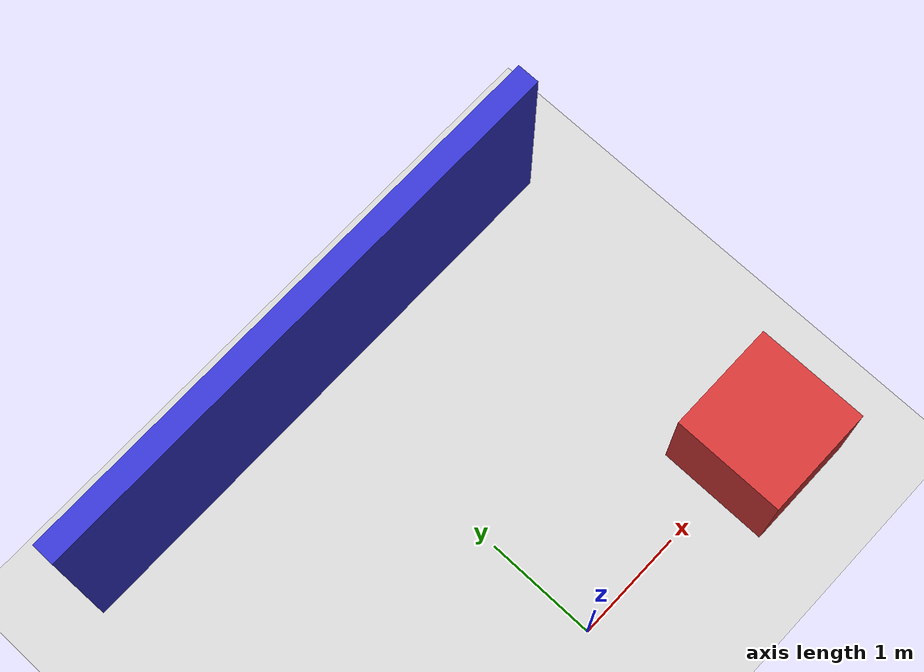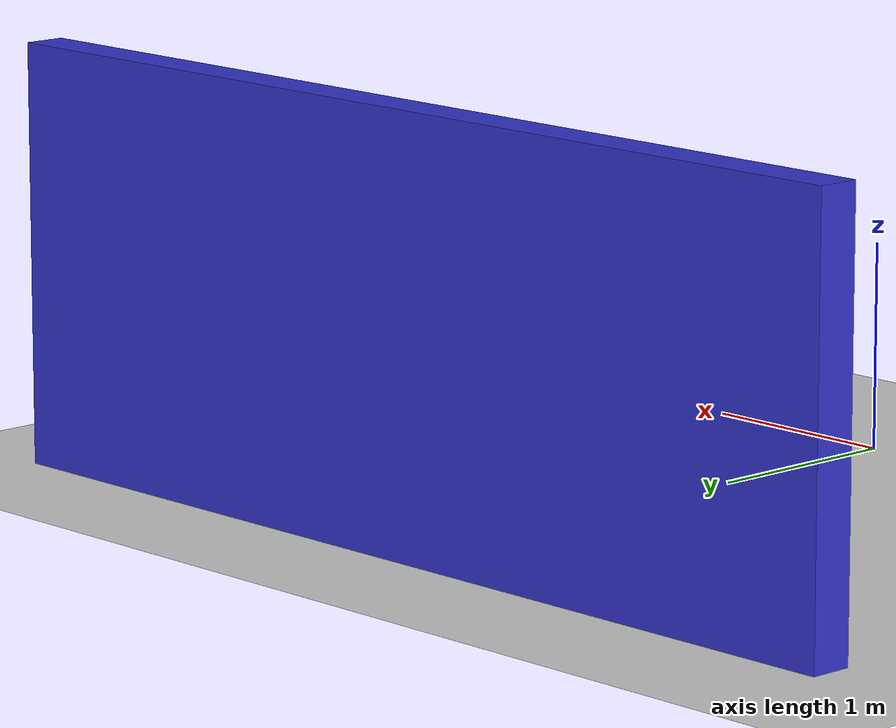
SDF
<?xml version="1.0"?>
<sdf version="1.6">
  <world name="default">
    <!-- A global light source -->
    <include>
      <uri>model://sun</uri>
    </include>
    <!-- A ground plane -->
    <include>
      <uri>model://ground_plane</uri>
    </include>

    <!-- Test box in front of robot -->
    <model name="test_box">
      <pose>2 0 0.5 0 0 0</pose>
      <static>true</static>
      <link name="link">
        <collision name="collision">
          <geometry>
            <box>
              <size>1 1 1</size>
            </box>
          </geometry>
        </collision>
        <visual name="visual">
          <geometry>
            <box>
              <size>1 1 1</size>
            </box>
          </geometry>
          <material>
            <ambient>0.8 0.2 0.2 1</ambient>
            <diffuse>0.8 0.2 0.2 1</diffuse>
          </material>
        </visual>
      </link>
    </model>

    <!-- Test wall to the side -->
    <model name="test_wall">
      <pose>0 3 1 0 0 0</pose>
      <static>true</static>
      <link name="link">
        <collision name="collision">
          <geometry>
            <box>
              <size>5 0.2 2</size>
            </box>
          </geometry>
        </collision>
        <visual name="visual">
          <geometry>
            <box>
              <size>5 0.2 2</size>
            </box>
          </geometry>
          <material>
            <ambient>0.2 0.2 0.8 1</ambient>
            <diffuse>0.2 0.2 0.8 1</diffuse>
          </material>
        </visual>
      </link>
    </model>

    <physics type="ode">
      <max_step_size>0.001</max_step_size>
      <real_time_factor>1</real_time_factor>
      <real_time_update_rate>1000</real_time_update_rate>
      <gravity>0 0 -9.81</gravity>
    </physics>
  </world>
</sdf>
